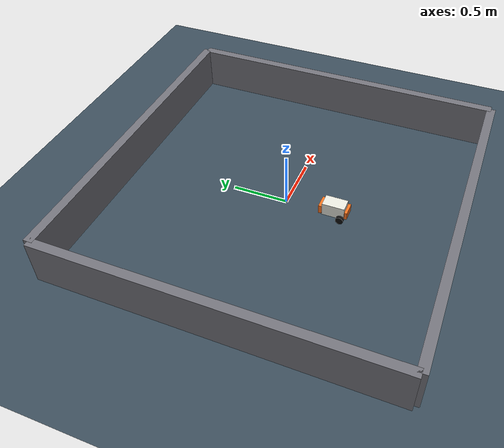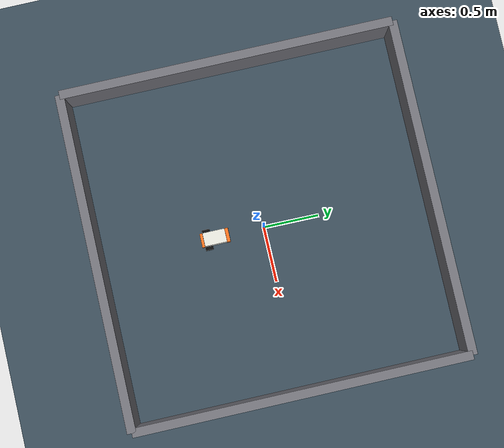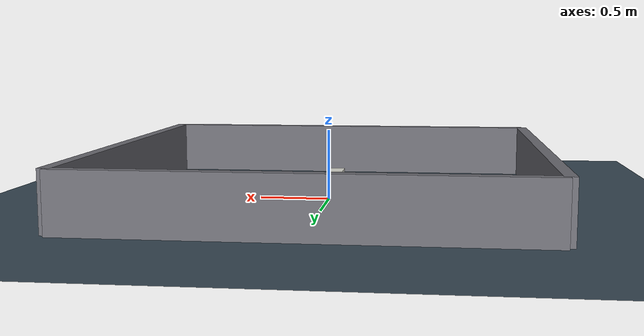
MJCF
<mujoco model="toy_cleaner_sandbox">
  <compiler angle="degree" coordinate="local"/>

  <option timestep="0.005" gravity="0 0 -9.81" integrator="implicitfast"/>

  <default>
    <geom contype="1" conaffinity="1" condim="3" friction="0.8 0.04 0.01"/>
    <joint damping="0.02"/>
    <default class="wheel">
      <geom type="cylinder" size="0.035 0.018" material="wheel_mat"
            mass="0.05" condim="4" friction="2.2 0.12 0.02"
            solref="0.01 1" solimp="0.9 0.95 0.001"/>
      <joint type="hinge" axis="1 0 0" damping="0.01" armature="0.0005"/>
    </default>
    <default class="chassis">
      <geom friction="0.5 0.02 0.01"/>
    </default>
    <default class="bumper">
      <geom friction="0.7 0.03 0.01"/>
    </default>
  </default>

  <asset>
    <texture name="grid" type="2d" builtin="checker" width="512" height="512"
             rgb1="0.18 0.24 0.28" rgb2="0.28 0.36 0.42"/>
    <material name="floor_mat" texture="grid" texrepeat="6 6" reflectance="0.15"/>
    <material name="rover_mat" rgba="0.9 0.9 0.86 1"/>
    <material name="wheel_mat" rgba="0.05 0.05 0.05 1"/>
    <material name="bumper_mat" rgba="1.0 0.45 0.12 1"/>
    <material name="obstacle_mat" rgba="0.45 0.45 0.48 1"/>
    <material name="toy_mat" rgba="0.95 0.82 0.18 1"/>
  </asset>

  <worldbody>
    <light pos="0 0 4" dir="0 0 -1" diffuse="0.8 0.8 0.8"/>
    <camera name="overview" pos="0 -3.2 2.4" xyaxes="1 0 0 0 0.6 0.8"/>

    <geom name="floor" type="plane" size="3 3 0.05" material="floor_mat"/>

    <!-- Room edges. -->
    <geom name="back_wall" type="box" pos="0 1.5 0.2" size="1.5 0.04 0.2" material="obstacle_mat"/>
    <geom name="left_wall" type="box" pos="-1.5 0 0.2" size="0.04 1.5 0.2" material="obstacle_mat"/>
    <geom name="right_wall" type="box" pos="1.5 0 0.2" size="0.04 1.5 0.2" material="obstacle_mat"/>
    <geom name="front_wall" type="box" pos="0 -1.5 0.2" size="1.5 0.04 0.2" material="obstacle_mat"/>

    <body name="rover" pos="0 -0.45 0.0">
      <freejoint name="rover_free"/>
      <inertial pos="0 0 0.075" mass="0.75" diaginertia="0.0030 0.0025 0.0025"/>
      <!-- Approximate real rover envelope: 120 W x 200 L x 120 H mm. -->
      <geom name="chassis" class="chassis" type="box" pos="0 0 0.09" size="0.06 0.10 0.06"
            material="rover_mat"/>
      <geom name="front_bumper" class="bumper" type="box" pos="0 0.115 0.08" size="0.062 0.015 0.04"
            material="bumper_mat"/>
      <geom name="rear_bumper" class="bumper" type="box" pos="0 -0.115 0.08" size="0.062 0.012 0.035"
            material="bumper_mat"/>

      <body name="left_wheel" pos="-0.075 -0.07 0.035">
        <joint name="left_wheel_hinge" class="wheel"/>
        <geom name="left_wheel_geom" class="wheel" euler="0 90 0"/>
      </body>
      <body name="right_wheel" pos="0.075 -0.07 0.035">
        <joint name="right_wheel_hinge" class="wheel"/>
        <geom name="right_wheel_geom" class="wheel" euler="0 90 0"/>
      </body>
      <geom name="front_caster_geom" type="sphere" pos="0 0.075 0.025"
            size="0.02" mass="0.03" material="wheel_mat" condim="3"
            friction="0.4 0.02 0.01"/>
    </body>
  </worldbody>

  <actuator>
    <velocity name="left_motor" joint="left_wheel_hinge" kv="0.08" ctrlrange="-20 20"/>
    <velocity name="right_motor" joint="right_wheel_hinge" kv="0.08" ctrlrange="-20 20"/>
  </actuator>
</mujoco>
